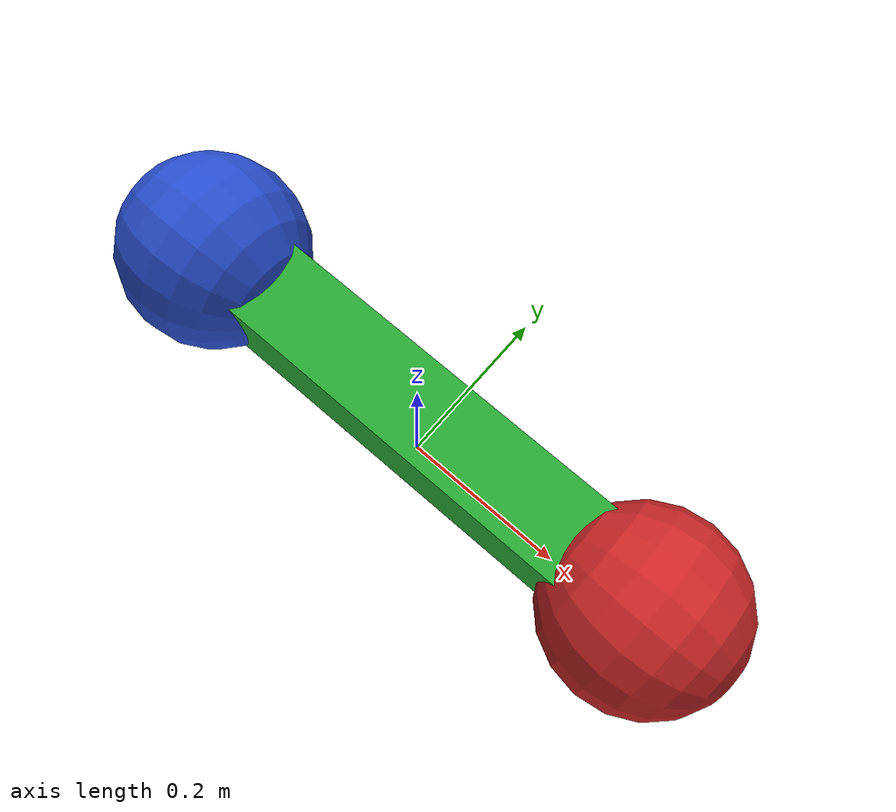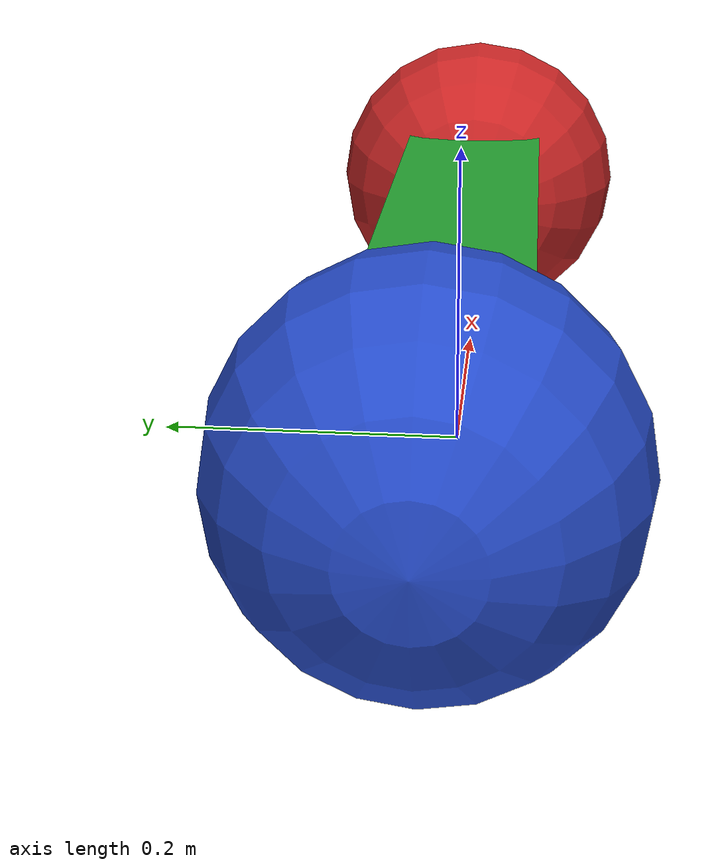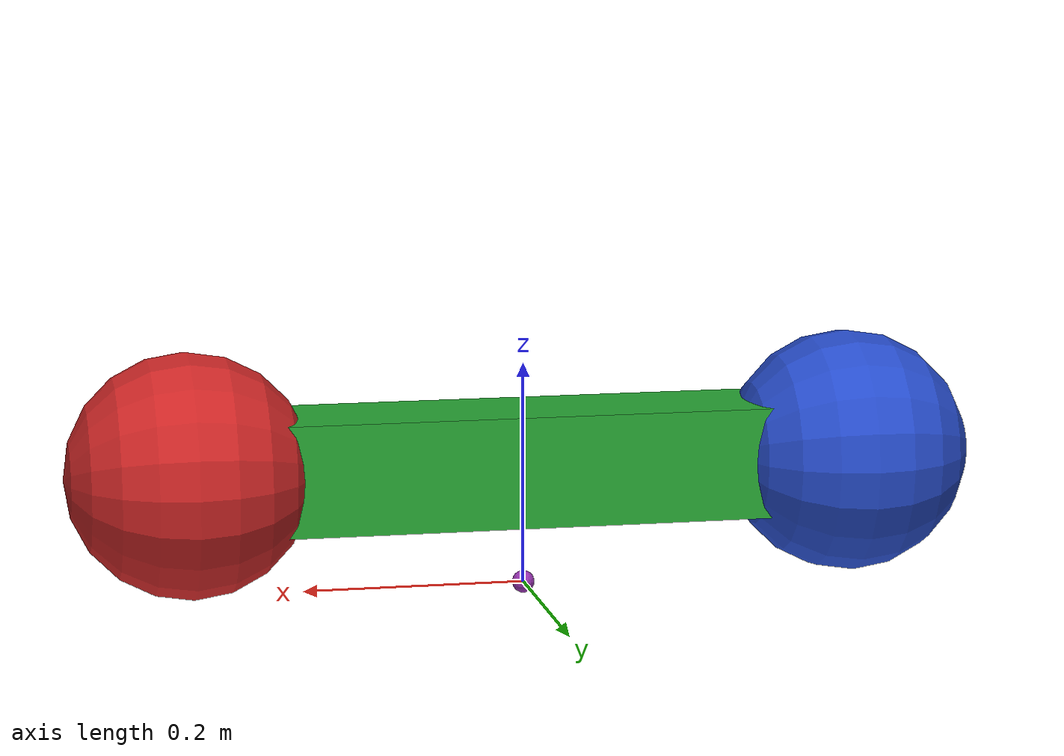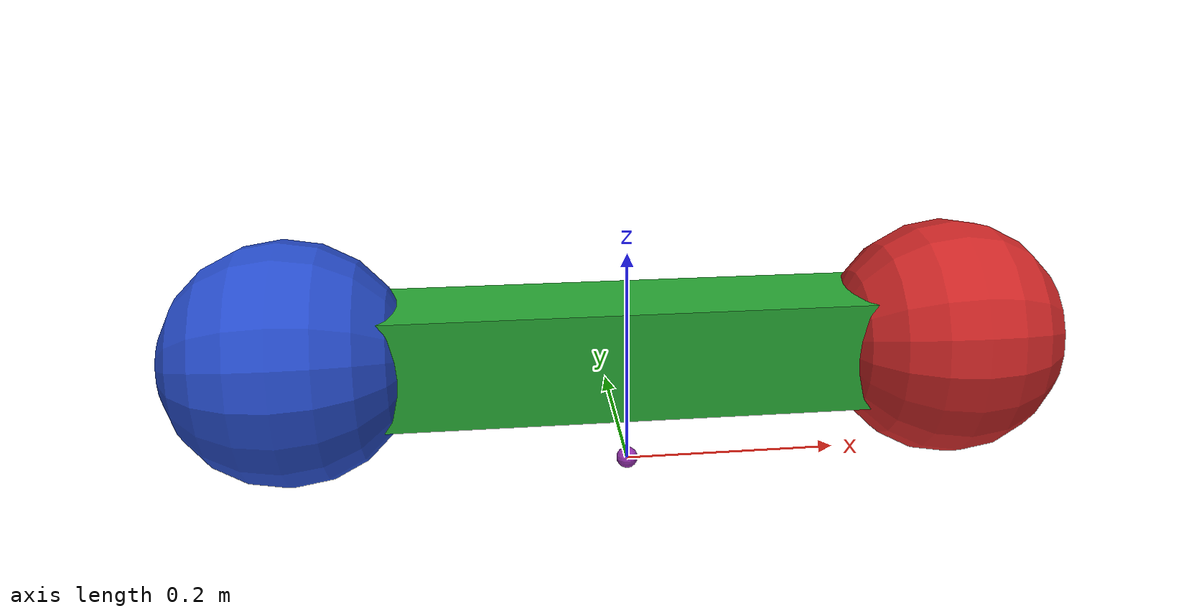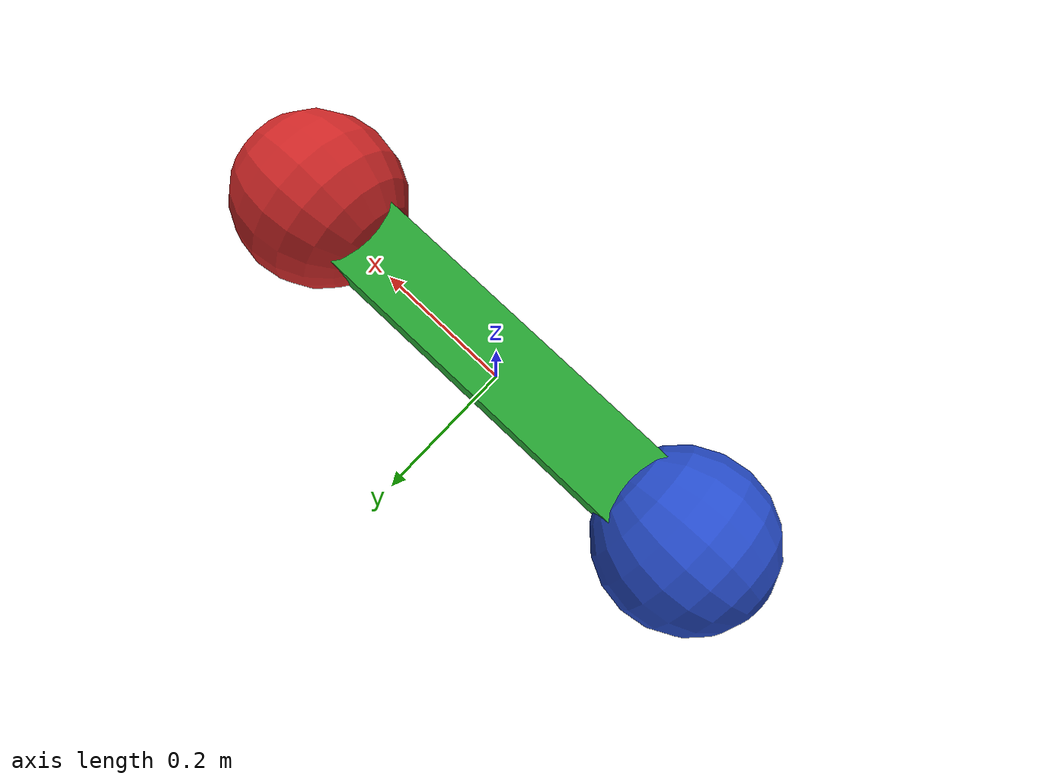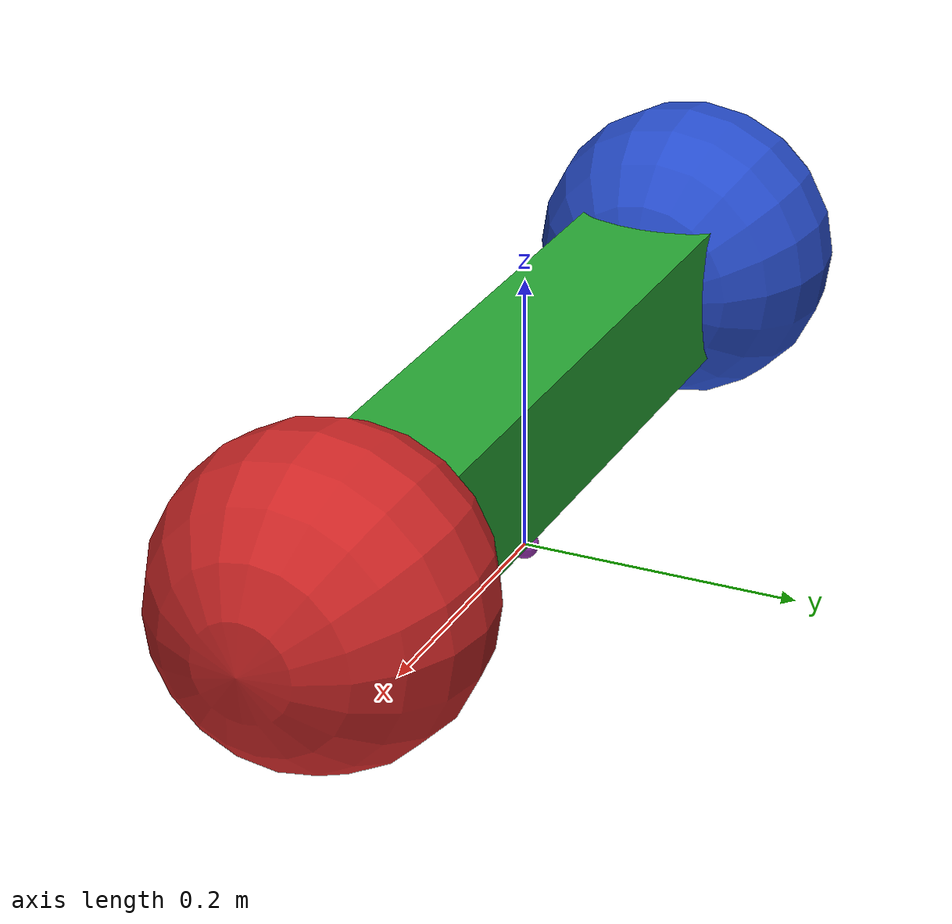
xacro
<?xml version="1.0"?>
<robot name="robot" xmlns:xacro="http://www.ros.org/wiki/xacro">
  <!--
  Robot model taken from http://wiki.ros.org/pr2_mechanism/Tutorials/SImple%20URDF-Controller%20Example
  -->
  <!-- Constants for robot dimensions -->
  <xacro:property name="PI" value="3.1415926535897931"/>
  <xacro:property name="width" value="0.5" /> <!-- Square dimensions (widthxwidth) of beams -->
  <xacro:property name="wheel_radius" value="0.11" /> <!-- Link 1 -->
  <xacro:property name="thickness" value="0.086" /> <!-- Link 2 -->
  <xacro:property name="axel_offset" value="0.05" /> <!-- Space btw top of beam and the each joint -->

  <!-- Links: inertial,visual,collision -->
  <link name="base_link">
    <inertial>
      <!-- origin is relative -->
      <origin xyz="0 0 0" rpy="0 0 0"/>
      <mass value="5"/>
      <inertia ixx="5" ixy="0" ixz="0" iyy="5" iyz="0" izz="5"/>
    </inertial>
    <visual>
      <geometry>
        <box size="${width} 0.1 0.1"/>
      </geometry>
    </visual>
    <collision>
      <!-- origin is relative -->
      <origin xyz="0 0 0"/>
      <geometry>
        <box size="${width} 0.1 0.1"/>
      </geometry>
    </collision>
  </link>

  <link name="base_footprint">
    <visual>
      <geometry>
        <sphere radius="0.01"/>
      </geometry>
    </visual>
    <collision>
      <origin xyz="0 0 0"/>
      <geometry>
        <sphere radius="0.00000001"/>
      </geometry>
    </collision>
  </link>
  <joint name="base_footprint_joint" type="fixed">
    <origin xyz="0 0 ${wheel_radius}" rpy="0 0 0"/>
    <child link="base_link"/>
    <parent link="base_footprint"/>
  </joint>

  <link name="wheel1">
    <inertial>
      <origin xyz="0 0 0" rpy="0 0 0"/>
      <mass value="1"/>
      <inertia ixx="0.2" ixy="0" ixz="0" iyy="0.2" iyz="0" izz="0.2"/>
    </inertial>
    <visual>
      <origin xyz="0 0 0" rpy="0 ${PI/2} 0"/>
      <geometry>
        <sphere radius="${wheel_radius}"/>
      </geometry>
    </visual>
    <collision>
      <origin xyz="0 0 0" rpy="0 ${PI/2} 0"/>
      <geometry>
        <sphere radius="${wheel_radius}"/>
      </geometry>
    </collision>
  </link>
<!--  name should not match yaml -->
  <joint name="joint_w1" type="continuous">
    <parent link="base_link"/>
    <child link="wheel1"/>
    <origin xyz="${width/2+axel_offset} 0 0" rpy="${-PI/2} 0 0"/>
    <axis xyz="0 1 0"/>
  </joint>

  <link name="wheel2">
    <inertial>
      <origin xyz="0 0 0" rpy="0 0 0"/>
      <mass value="1"/>
      <inertia ixx="0.2" ixy="0" ixz="0" iyy="0.2" iyz="0" izz="0.2"/>
    </inertial>
    <visual>
      <origin xyz="0 0 0" rpy="0 ${PI/2} 0"/>
      <geometry>
        <sphere radius="${wheel_radius}"/>
      </geometry>
    </visual>
    <collision>
      <origin xyz="0 0 0" rpy="0 ${PI/2} 0"/>
      <geometry>
        <sphere radius="${wheel_radius}"/>
      </geometry>
    </collision>
  </link>
  <!--  name should not match yaml -->
  <joint name="joint_w2" type="continuous">
    <parent link="base_link"/>
    <child link="wheel2"/>
    <origin xyz="${-width/2-axel_offset} 0 0" rpy="${-PI/2} 0 0"/>
    <axis xyz="0 1 0"/>
  </joint>

  <!-- Transmission is important to link the joints and the controller -->
  <transmission name="joint_w1_trans" type="SimpleTransmission">
    <actuator name="joint_w1_motor" />
    <joint name="joint_w1" />
    <mechanicalReduction>1</mechanicalReduction>
    <motorTorqueConstant>1</motorTorqueConstant>
  </transmission>

  <transmission name="joint_w2_trans" type="SimpleTransmission">
    <actuator name="joint_w2_motor" />
    <joint name="joint_w2" />
    <mechanicalReduction>1</mechanicalReduction>
    <motorTorqueConstant>1</motorTorqueConstant>
  </transmission>

  <!-- Colour -->
  <gazebo reference="base_link">
    <material>Gazebo/Green</material>
  </gazebo>

  <gazebo reference="wheel1">
    <material>Gazebo/Red</material>
  </gazebo>

  <gazebo reference="wheel2">
    <material>Gazebo/Blue</material>
  </gazebo>

  <gazebo reference="base_footprint">
    <material>Gazebo/Purple</material>
  </gazebo>

</robot>
